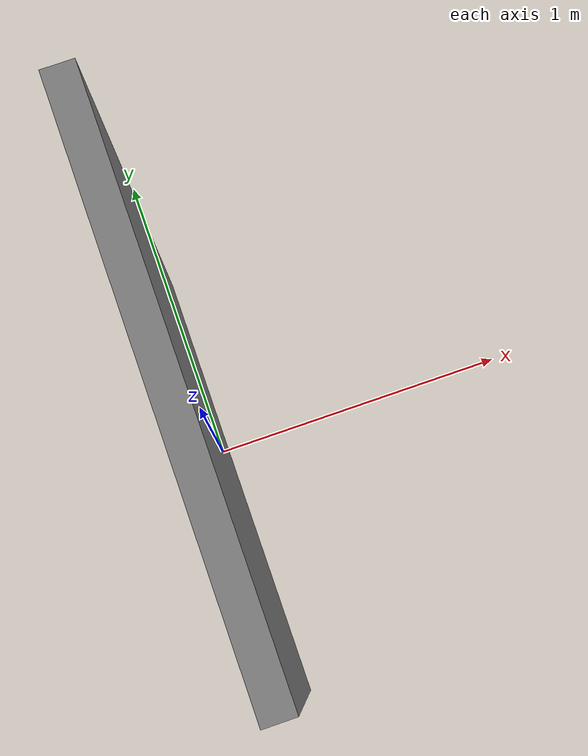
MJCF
<mujoco model="wall">
  <compiler angle="radian" autolimits="true"/>

  <asset>
    <material name="box_mat" rgba="0.5 0.5 0.5 1" specular="0.4" shininess="0.2"/>
  </asset>

  <worldbody>
    <body name="box" pos="-0.05 0 0.2">
      <geom name="box_geom" type="box" size="0.05 0.9 1.3"
            mass="0.1" material="box_mat" condim="6"
            friction="0.3 0.005 0.001"
            solimp="0.95 0.99 0.001" solref="0.02 1.0"/>
      <site name="box_center" pos="0 0 0" size="0.003" rgba="1 0 0 1"/>
    </body>
  </worldbody>
</mujoco>
